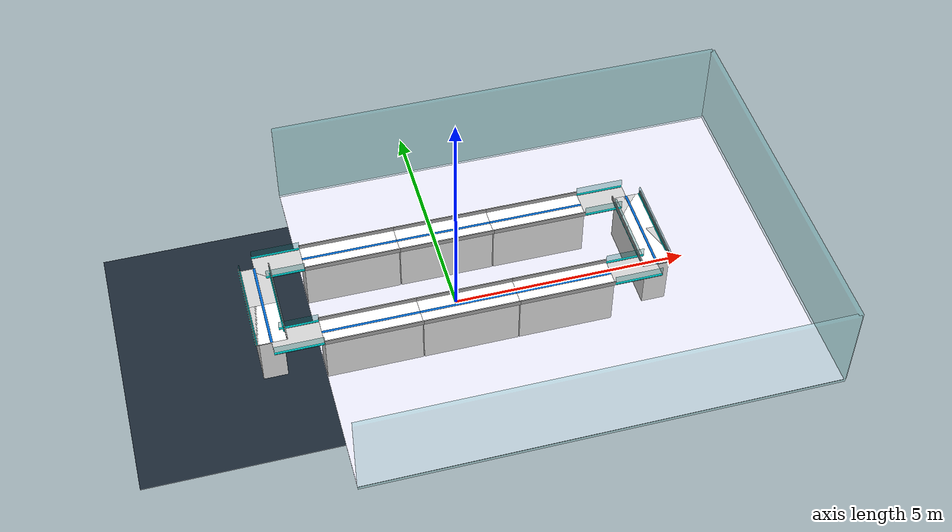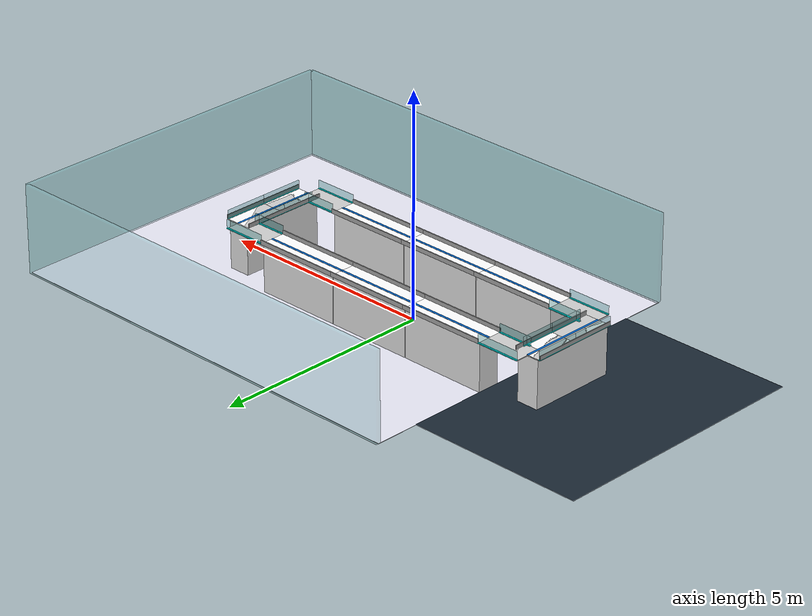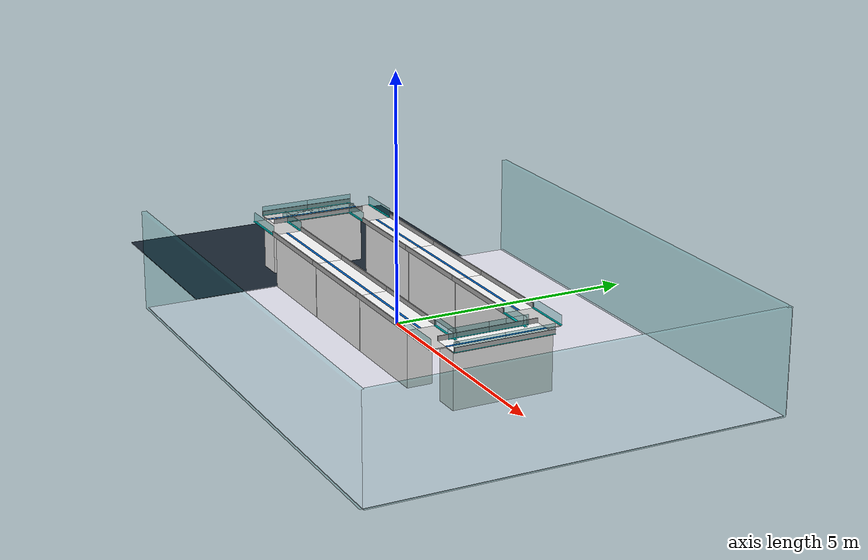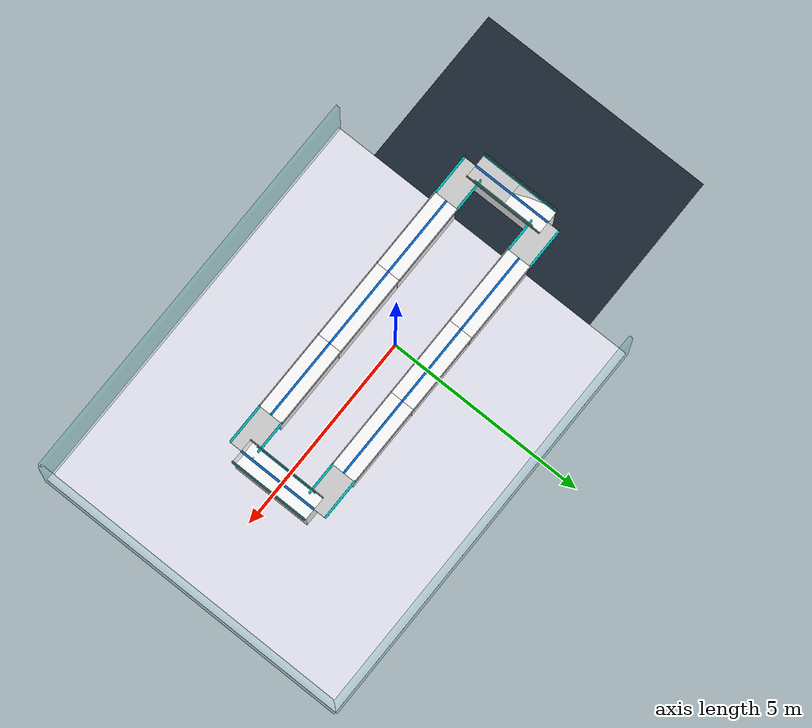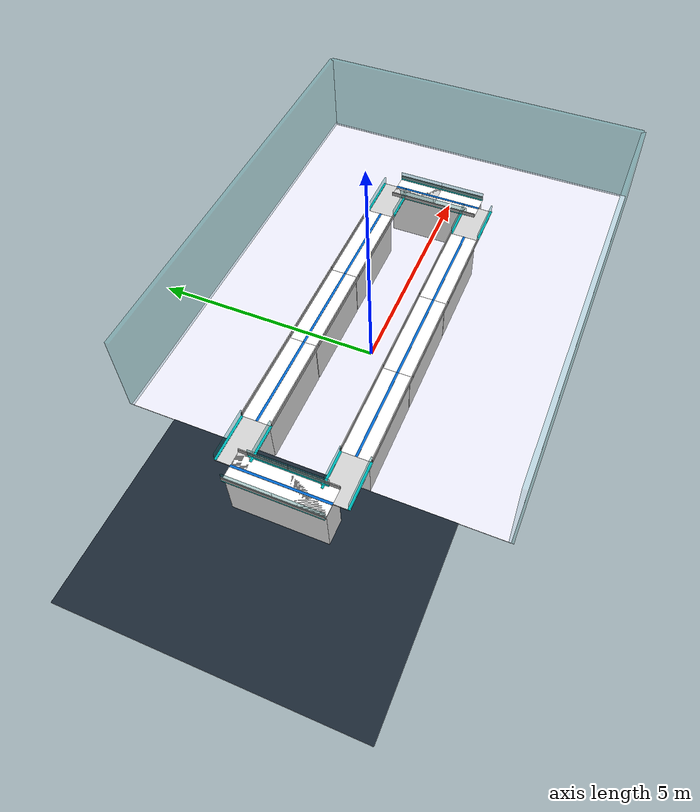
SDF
<sdf version="1.8">
 <world name="ai_waiver_restaurant">
  <physics name="1ms" type="ignored">
   <max_step_size>0.001</max_step_size>
   <real_time_factor>1.0</real_time_factor>
  </physics>
  <plugin filename="ignition-gazebo-physics-system" name="ignition::gazebo::systems::Physics"/>
  <plugin filename="ignition-gazebo-scene-broadcaster-system" name="ignition::gazebo::systems::SceneBroadcaster"/>
  <plugin filename="ignition-gazebo-user-commands-system" name="ignition::gazebo::systems::UserCommands"/>
  <plugin filename="ignition-gazebo-sensors-system" name="ignition::gazebo::systems::Sensors">
   <render_engine>ogre2</render_engine>
  </plugin>
  <light type="directional" name="restaurant_light">
   <pose>0 0 10 0 0 0</pose>
   <diffuse>1.0 1.0 1.0 1</diffuse>
   <specular>0.5 0.5 0.5 1</specular>
   <direction>-0.5 0.1 -0.9</direction>
  </light>
  <model name="floor_kitchen">
   <static>true</static>
   <pose>-5 0 0.01 0 0 0</pose>
   <link name="l">
    <visual name="v">
     <geometry><box><size>4 6 0.01</size></box></geometry>
     <material><ambient>0.1 0.15 0.2 1</ambient><diffuse>0.1 0.15 0.2 1</diffuse></material>
    </visual>
   </link>
  </model>
  <model name="floor_dining">
   <static>true</static>
   <pose>2 0 0 0 0 0</pose>
   <link name="l">
    <visual name="v">
     <geometry><box><size>10 8 0.01</size></box></geometry>
     <material><ambient>0.9 0.9 0.95 1</ambient><diffuse>0.9 0.9 0.95 1</diffuse></material>
    </visual>
   </link>
  </model>
  <include>
   <static>true</static>
   <uri>model://delivery_track_corner</uri>
   <name>c_nw</name>
   <pose>-4 1 1.1 0 0 -1.5708</pose>
  </include>
  <include>
   <static>true</static>
   <uri>model://delivery_track</uri>
   <name>t_top_1</name>
   <pose>-2 1 1.1 0 0 0</pose>
  </include>
  <include>
   <static>true</static>
   <uri>model://delivery_track</uri>
   <name>t_top_2</name>
   <pose>0 1 1.1 0 0 0</pose>
  </include>
  <include>
   <static>true</static>
   <uri>model://delivery_track</uri>
   <name>t_top_3</name>
   <pose>2 1 1.1 0 0 0</pose>
  </include>
  <include>
   <static>true</static>
   <uri>model://delivery_track_corner</uri>
   <name>c_ne</name>
   <pose>4 1 1.1 0 0 3.14159</pose>
  </include>
  <include>
   <static>true</static>
   <uri>model://delivery_track</uri>
   <name>t_right</name>
   <pose>4 0 1.1 0 0 1.5708</pose>
  </include>
  <include>
   <static>true</static>
   <uri>model://delivery_track_corner</uri>
   <name>c_se</name>
   <pose>4 -1 1.1 0 0 1.5708</pose>
  </include>
  <include>
   <static>true</static>
   <uri>model://delivery_track</uri>
   <name>t_bot_1</name>
   <pose>2 -1 1.1 0 0 0</pose>
  </include>
  <include>
   <static>true</static>
   <uri>model://delivery_track</uri>
   <name>t_bot_2</name>
   <pose>0 -1 1.1 0 0 0</pose>
  </include>
  <include>
   <static>true</static>
   <uri>model://delivery_track</uri>
   <name>t_bot_3</name>
   <pose>-2 -1 1.1 0 0 0</pose>
  </include>
  <include>
   <static>true</static>
   <uri>model://delivery_track_corner</uri>
   <name>c_sw</name>
   <pose>-4 -1 1.1 0 0 0</pose>
  </include>
  <include>
   <static>true</static>
   <uri>model://delivery_track</uri>
   <name>t_left</name>
   <pose>-4 0 1.1 0 0 1.5708</pose>
  </include>
  <model name="wall_back">
   <static>true</static>
   <pose>7 0 1 0 0 0</pose>
   <link name="l">
    <visual name="v">
     <geometry><box><size>0.1 8 2</size></box></geometry>
     <material><ambient>0 0.5 0.5 0.2</ambient><diffuse>0 0.5 0.5 0.2</diffuse></material>
    </visual>
   </link>
  </model>
  <model name="wall_left">
   <static>true</static>
   <pose>2 4 1 0 0 0</pose>
   <link name="l">
    <visual name="v">
     <geometry><box><size>10 0.1 2</size></box></geometry>
     <material><ambient>0 0.5 0.5 0.2</ambient><diffuse>0 0.5 0.5 0.2</diffuse></material>
    </visual>
   </link>
  </model>
  <model name="wall_right">
   <static>true</static>
   <pose>2 -4 1 0 0 0</pose>
   <link name="l">
    <visual name="v">
     <geometry><box><size>10 0.1 2</size></box></geometry>
     <material><ambient>0 0.5 0.5 0.2</ambient><diffuse>0 0.5 0.5 0.2</diffuse></material>
    </visual>
   </link>
  </model>
 </world>
</sdf>

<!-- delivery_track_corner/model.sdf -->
<sdf version="1.8">
  <model name="delivery_track_corner">
    <static>true</static>
    <link name="link">
      <!-- L-Shaped Floor (0.6m wide) -->
      <visual name="floor_h">
        <pose>0.5 0 0 0 0 0</pose>
        <geometry><box><size>1.0 0.6 0.02</size></box></geometry>
        <material><ambient>0.8 0.8 0.8 1</ambient><diffuse>0.8 0.8 0.8 1</diffuse></material>
      </visual>
      <visual name="floor_v">
        <pose>0 0.5 0 0 0 0</pose>
        <geometry><box><size>0.6 1.0 0.02</size></box></geometry>
        <material><ambient>0.8 0.8 0.8 1</ambient><diffuse>0.8 0.8 0.8 1</diffuse></material>
      </visual>

      <!-- Outer Glass Walls (The outer elbow) -->
      <visual name="glass_outer_h">
        <pose>0.5 -0.3 0.1 0 0 0</pose>
        <geometry><box><size>1.0 0.02 0.2</size></box></geometry>
        <material><ambient>0 0.5 0.5 0.3</ambient><diffuse>0 0.5 0.5 0.3</diffuse></material>
      </visual>
      <visual name="glass_outer_v">
        <pose>-0.3 0.5 0.1 0 0 0</pose>
        <geometry><box><size>0.02 1.0 0.2</size></box></geometry>
        <material><ambient>0 0.5 0.5 0.3</ambient><diffuse>0 0.5 0.5 0.3</diffuse></material>
      </visual>

      <!-- Inner Glass Walls (The inner elbow) -->
      <visual name="glass_inner_h">
        <pose>0.6 0.3 0.1 0 0 0</pose>
        <geometry><box><size>0.8 0.02 0.2</size></box></geometry>
        <material><ambient>0 0.5 0.5 0.3</ambient><diffuse>0 0.5 0.5 0.3</diffuse></material>
      </visual>
      <visual name="glass_inner_v">
        <pose>0.3 0.6 0.1 0 0 0</pose>
        <geometry><box><size>0.02 0.8 0.2</size></box></geometry>
        <material><ambient>0 0.5 0.5 0.3</ambient><diffuse>0 0.5 0.5 0.3</diffuse></material>
      </visual>

      <!-- Neon Accents Outer -->
      <visual name="neon_outer_h">
         <pose>0.5 -0.3 0.01 0 0 0</pose>
         <geometry><box><size>1.0 0.05 0.01</size></box></geometry>
         <material><ambient>0 1 1 1</ambient><diffuse>0 1 1 1</diffuse><emissive>0 1 1 1</emissive></material>
      </visual>
      <visual name="neon_outer_v">
         <pose>-0.3 0.5 0.01 0 0 0</pose>
         <geometry><box><size>0.05 1.0 0.01</size></box></geometry>
         <material><ambient>0 1 1 1</ambient><diffuse>0 1 1 1</diffuse><emissive>0 1 1 1</emissive></material>
      </visual>

      <!-- Neon Accents Inner -->
      <visual name="neon_inner_h">
         <pose>0.6 0.3 0.01 0 0 0</pose>
         <geometry><box><size>0.8 0.05 0.01</size></box></geometry>
         <material><ambient>0 1 1 1</ambient><diffuse>0 1 1 1</diffuse><emissive>0 1 1 1</emissive></material>
      </visual>
      <visual name="neon_inner_v">
         <pose>0.3 0.6 0.01 0 0 0</pose>
         <geometry><box><size>0.05 0.8 0.01</size></box></geometry>
         <material><ambient>0 1 1 1</ambient><diffuse>0 1 1 1</diffuse><emissive>0 1 1 1</emissive></material>
      </visual>

      <collision name="c1"><pose>0.5 0 0 0 0 0</pose><geometry><box><size>1.0 0.6 0.02</size></box></geometry></collision>
      <collision name="c2"><pose>0 0.5 0 0 0 0</pose><geometry><box><size>0.6 1.0 0.02</size></box></geometry></collision>
    </link>
  </model>
</sdf>

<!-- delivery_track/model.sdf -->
<sdf version="1.8">
  <model name="delivery_track">
    <static>true</static>
    <link name="link">
      <!-- Main Track Countertop (Pure White) -->
      <visual name="floor">
        <geometry><box><size>2.0 0.6 0.02</size></box></geometry>
        <material>
          <ambient>1 1 1 1</ambient>
          <diffuse>1 1 1 1</diffuse>
          <specular>0.8 0.8 0.8 1</specular>
        </material>
      </visual>
      <collision name="floor_c">
        <geometry><box><size>2.0 0.6 0.02</size></box></geometry>
      </collision>

      <!-- SOLID WHITE PEDESTAL (To ground) - Visual only to avoid ODE crashes -->
      <visual name="pedestal">
        <pose>0 0 -0.55 0 0 0</pose>
        <geometry><box><size>1.98 0.5 1.1</size></box></geometry>
        <material>
          <ambient>0.95 0.95 0.95 1</ambient>
          <diffuse>0.95 0.95 0.95 1</diffuse>
        </material>
      </visual>

      <!-- Right Silver Rail (Low Height) -->
      <visual name="rail_right">
        <pose>0 -0.31 0.05 0 0 0</pose>
        <geometry><box><size>2.0 0.02 0.1</size></box></geometry>
        <material>
          <ambient>0.7 0.7 0.7 1</ambient>
          <diffuse>0.7 0.7 0.7 1</diffuse>
          <specular>1 1 1 1</specular>
        </material>
      </visual>

      <!-- Left Silver Rail (Low Height) -->
      <visual name="rail_left">
        <pose>0 0.31 0.05 0 0 0</pose>
        <geometry><box><size>2.0 0.02 0.1</size></box></geometry>
        <material>
          <ambient>0.7 0.7 0.7 1</ambient>
          <diffuse>0.7 0.7 0.7 1</diffuse>
          <specular>1 1 1 1</specular>
        </material>
      </visual>

      <!-- Blue Tech Accent Strip -->
      <visual name="accent">
        <pose>0 0 0.011 0 0 0</pose>
        <geometry><box><size>2.0 0.05 0.005</size></box></geometry>
        <material>
          <ambient>0 0.4 0.8 1</ambient>
          <diffuse>0 0.4 0.8 1</diffuse>
          <emissive>0 0.2 0.4 1</emissive>
        </material>
      </visual>
    </link>
  </model>
</sdf>
